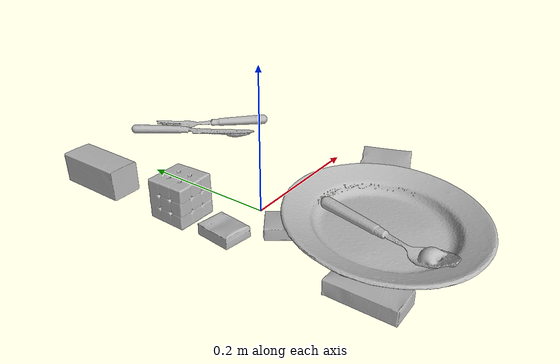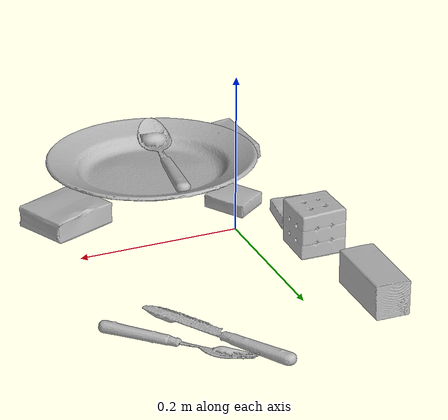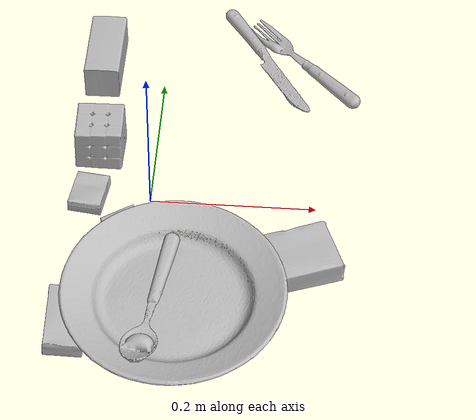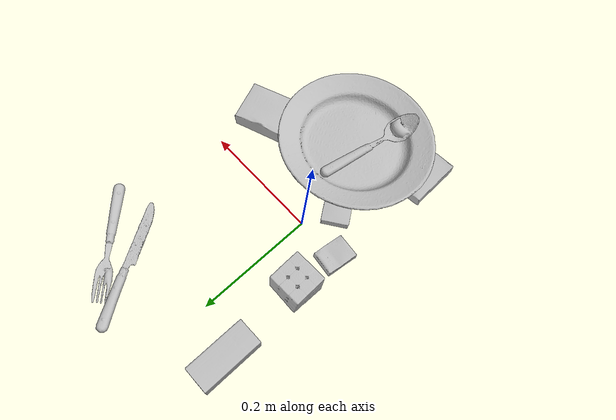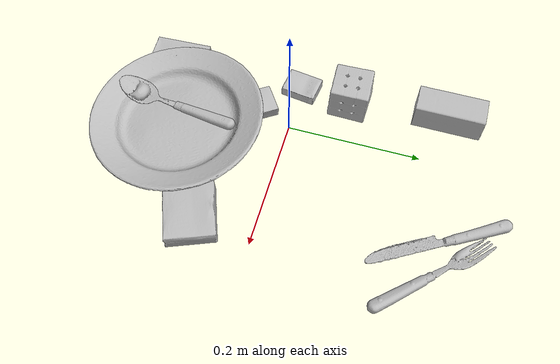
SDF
<sdf version="1.4">
  <world name="default">
    <light name="light1" type="point">
      <pose>0 0 1 0 0 0</pose>
      <diffuse>3 3 3 1</diffuse>
      <specular>3 3 3 1</specular>
    </light>
    <light name="light2" type="point">
      <pose>0 0.5 2 0 0 0</pose>
      <diffuse>1 1 1 1</diffuse>
      <specular>1 1 1 1</specular>
    </light>
    <light name="light3" type="point">
      <pose>0 0.5 2 0 0 0</pose>
      <diffuse>3 3 3 1</diffuse>
      <specular>3 3 3 1</specular>
    </light>
    <scene>
      <ambient>0.7 0.7 0.7</ambient>
    </scene>
    <model name="box11">
      <link name="link_box11">
        <collision name="default">
          <geometry>
            <mesh>
              <uri>model://gelatin_box/collision_meshes/collision.obj</uri>
              <scale>1.0 1.0 1.0</scale>
            </mesh>
          </geometry>
          <surface>
            <friction>
              <ode>
                <mu>0.5</mu>
                <mu2>0.5</mu2>
              </ode>
            </friction>
          <contact>
        <ode>
            <max_vel>0</max_vel>
            <min_depth>0.0001</min_depth>
            <kp>1e8</kp>
        </ode>
    </contact></surface>
        </collision>
        <visual name="default">
          <geometry>
            <mesh>
              <uri>model://gelatin_box/visual_meshes/visual.dae</uri>
              <scale>1.0 1.0 1.0</scale>
            </mesh>
          </geometry>
        </visual>
        <inertial>
          <mass>0.25029057264328003</mass>
          <pose>0.0004319618456065655 0.00011156871914863586 -0.0003640321083366871 -0.0010503719874808634 -0.004755820553863559 0.01644055760983946</pose>
          <inertia>
            <ixx>0.00017668474</ixx>
            <iyy>0.000126205</iyy>
            <izz>0.00026895347</izz>
            <ixy>0</ixy>
            <ixz>0</ixz>
            <iyz>0</iyz>
          </inertia>
        </inertial>
      </link>
      <pose>0.18359896540641785 -0.0901639312505722 0.015168323181569576 0.005605915838325356 -0.007307073465188841 1.9293098280125327</pose>
    </model>
    <model name="box12">
      <link name="link_box12">
        <collision name="default">
          <geometry>
            <mesh>
              <uri>model://rubiks_cube/collision_meshes/collision.obj</uri>
              <scale>1.0 1.0 1.0</scale>
            </mesh>
          </geometry>
          <surface>
            <friction>
              <ode>
                <mu>0.5</mu>
                <mu2>0.5</mu2>
              </ode>
            </friction>
          <contact>
        <ode>
            <max_vel>0</max_vel>
            <min_depth>0.0001</min_depth>
            <kp>1e8</kp>
        </ode>
    </contact></surface>
        </collision>
        <visual name="default">
          <geometry>
            <mesh>
              <uri>model://rubiks_cube/visual_meshes/visual.dae</uri>
              <scale>1.0 1.0 1.0</scale>
            </mesh>
          </geometry>
        </visual>
        <inertial>
          <mass>0.21638615429401398</mass>
          <pose>2.6721043468569405e-05 5.2569666877388954e-05 -7.264316536748083e-06 -0.054671974778446215 -0.0981397652693683 -0.03445575269454635</pose>
          <inertia>
            <ixx>0.00011956789</ixx>
            <iyy>0.00011901029</iyy>
            <izz>0.00012055871</izz>
            <ixy>0</ixy>
            <ixz>0</ixz>
            <iyz>0</iyz>
          </inertia>
        </inertial>
      </link>
      <pose>-0.06796485930681229 0.07862000167369843 0.028678955510258675 -4.031718341525414e-06 -1.879343180076172e-06 -3.1202547471410362</pose>
    </model>
    <model name="box13">
      <link name="link_box13">
        <collision name="default">
          <geometry>
            <mesh>
              <uri>model://pudding_box/collision_meshes/collision.obj</uri>
              <scale>0.5 0.5 0.5</scale>
            </mesh>
          </geometry>
          <surface>
            <friction>
              <ode>
                <mu>0.5</mu>
                <mu2>0.5</mu2>
              </ode>
            </friction>
          <contact>
        <ode>
            <max_vel>0</max_vel>
            <min_depth>0.0001</min_depth>
            <kp>1e8</kp>
        </ode>
    </contact></surface>
        </collision>
        <visual name="default">
          <geometry>
            <mesh>
              <uri>model://pudding_box/visual_meshes/visual.dae</uri>
              <scale>0.5 0.5 0.5</scale>
            </mesh>
          </geometry>
        </visual>
        <inertial>
          <mass>0.024692855775356293</mass>
          <pose>0.00024474109522998333 0.00040339428232982755 -0.0002594413817860186 0.005213102294063647 -0.006603794537377036 0.020079827031592012</pose>
          <inertia>
            <ixx>6.9785e-06</ixx>
            <iyy>4.695185e-06</iyy>
            <izz>1.030558e-05</izz>
            <ixy>0</ixy>
            <ixz>0</ixz>
            <iyz>0</iyz>
          </inertia>
        </inertial>
      </link>
      <pose>-0.020994573831558228 -0.05647357553243637 0.009862903505563736 0.022348644235607416 -0.011391622776638381 -2.5324531890001887</pose>
    </model>
    <model name="box21">
      <link name="link_box21">
        <collision name="default">
          <geometry>
            <mesh>
              <uri>model://wood_block/collision_meshes/collision.obj</uri>
              <scale>0.5 0.5 0.5</scale>
            </mesh>
          </geometry>
          <surface>
            <friction>
              <ode>
                <mu>0.5</mu>
                <mu2>0.5</mu2>
              </ode>
            </friction>
          <contact>
        <ode>
            <max_vel>0</max_vel>
            <min_depth>0.0001</min_depth>
            <kp>1e8</kp>
        </ode>
    </contact></surface>
        </collision>
        <visual name="default">
          <geometry>
            <mesh>
              <uri>model://wood_block/visual_meshes/visual.dae</uri>
              <scale>0.5 0.5 0.5</scale>
            </mesh>
          </geometry>
        </visual>
        <inertial>
          <mass>0.2621258497238159</mass>
          <pose>-2.9066577553749084e-06 -0.000285404734313488 0.00013204291462898254 -0.05220799390803197 -0.005192696360797016 -0.006861376940793837</pose>
          <inertia>
            <ixx>8.7691005e-05</ixx>
            <iyy>0.00027701593</iyy>
            <izz>0.00027597975</izz>
            <ixy>0</ixy>
            <ixz>0</ixz>
            <iyz>0</iyz>
          </inertia>
        </inertial>
      </link>
      <pose>-0.07780526578426361 0.22830255329608917 0.022629261016845703 -0.00520844873291183 0.005718761212013853 1.5739961071647102</pose>
    </model>
    <model name="box22">
      <link name="link_box22">
        <collision name="default">
          <geometry>
            <mesh>
              <uri>model://cracker_box/collision_meshes/collision.obj</uri>
              <scale>0.25 0.25 0.25</scale>
            </mesh>
          </geometry>
          <surface>
            <friction>
              <ode>
                <mu>0.5</mu>
                <mu2>0.5</mu2>
              </ode>
            </friction>
          <contact>
        <ode>
            <max_vel>0</max_vel>
            <min_depth>0.0001</min_depth>
            <kp>1e8</kp>
        </ode>
    </contact></surface>
        </collision>
        <visual name="default">
          <geometry>
            <mesh>
              <uri>model://cracker_box/visual_meshes/visual.dae</uri>
              <scale>0.25 0.25 0.25</scale>
            </mesh>
          </geometry>
        </visual>
        <inertial>
          <mass>0.04544714838266373</mass>
          <pose>0.0002366049593547359 6.358561950037256e-05 -0.0004257383698131889 -0.0003162075981767565 -0.011106493326025165 0.0025467940711340945</pose>
          <inertia>
            <ixx>7.224829e-06</ixx>
            <iyy>1.1929612e-05</iyy>
            <izz>1.702465e-05</izz>
            <ixy>0</ixy>
            <ixz>0</ixz>
            <iyz>0</iyz>
          </inertia>
        </inertial>
      </link>
      <pose>-0.07384230196475983 0.00044496043119579554 0.009120453149080276 -0.011787973310358166 -0.007367202115109697 -1.699078317937116</pose>
    </model>
    <model name="box23">
      <link name="link_box23">
        <collision name="default">
          <geometry>
            <mesh>
              <uri>model://sugar_box/collision_meshes/collision.obj</uri>
              <scale>0.5 0.5 0.5</scale>
            </mesh>
          </geometry>
          <surface>
            <friction>
              <ode>
                <mu>0.5</mu>
                <mu2>0.5</mu2>
              </ode>
            </friction>
          <contact>
        <ode>
            <max_vel>0</max_vel>
            <min_depth>0.0001</min_depth>
            <kp>1e8</kp>
        </ode>
    </contact></surface>
        </collision>
        <visual name="default">
          <geometry>
            <mesh>
              <uri>model://sugar_box/visual_meshes/visual.dae</uri>
              <scale>0.5 0.5 0.5</scale>
            </mesh>
          </geometry>
        </visual>
        <inertial>
          <mass>0.08974423259496689</mass>
          <pose>0.0005171863595023751 1.924554817378521e-05 -0.00018182402709499002 -0.00040462647498757867 0.0010506636387592515 0.0026153785559760484</pose>
          <inertia>
            <ixx>1.869366e-05</ixx>
            <iyy>6.0421757e-05</iyy>
            <izz>7.233205e-05</izz>
            <ixy>0</ixy>
            <ixz>0</ixz>
            <iyz>0</iyz>
          </inertia>
        </inertial>
      </link>
      <pose>-0.07714968919754028 -0.20101484656333923 0.012020626105368137 0.0790924183835511 -0.007062313661698482 1.6030503381957533</pose>
    </model>
    <model name="plate1">
      <link name="link_plate1">
        <collision name="default">
          <geometry>
            <mesh>
              <uri>model://plate/collision_meshes/collision.obj</uri>
              <scale>1.0 1.0 1.0</scale>
            </mesh>
          </geometry>
          <surface>
            <friction>
              <ode>
                <mu>0.5</mu>
                <mu2>0.5</mu2>
              </ode>
            </friction>
          <contact>
        <ode>
            <max_vel>0</max_vel>
            <min_depth>0.0001</min_depth>
            <kp>1e8</kp>
        </ode>
    </contact></surface>
        </collision>
        <visual name="default">
          <geometry>
            <mesh>
              <uri>model://plate/visual_meshes/visual.dae</uri>
              <scale>1.0 1.0 1.0</scale>
            </mesh>
          </geometry>
        </visual>
        <inertial>
          <mass>0.25075921416282654</mass>
          <pose>-0.0006044597248546779 0.00027825814322568476 -0.0010562010575085878 0.0022187872861569474 -0.003225478732834207 0.4526086398584511</pose>
          <inertia>
            <ixx>0.0011730565</ixx>
            <iyy>0.0011618367</iyy>
            <izz>0.0022943232</izz>
            <ixy>0</ixy>
            <ixz>0</ixz>
            <iyz>0</iyz>
          </inertia>
        </inertial>
      </link>
      <pose>0.04233108460903168 -0.1609725058078766 0.020250165835022926 0.050371725770901855 0.04179712565753122 -0.6202711146632703</pose>
    </model>
    <model name="silverware1">
      <link name="link_silverware1">
        <collision name="default">
          <geometry>
            <mesh>
              <uri>model://spoon/collision_meshes/collision.obj</uri>
              <scale>1.0 1.0 1.0</scale>
            </mesh>
          </geometry>
          <surface>
            <friction>
              <ode>
                <mu>0.5</mu>
                <mu2>0.5</mu2>
              </ode>
            </friction>
          <contact>
        <ode>
            <max_vel>0</max_vel>
            <min_depth>0.0001</min_depth>
            <kp>1e8</kp>
        </ode>
    </contact></surface>
        </collision>
        <visual name="default">
          <geometry>
            <mesh>
              <uri>model://spoon/visual_meshes/visual.dae</uri>
              <scale>1.0 1.0 1.0</scale>
            </mesh>
          </geometry>
        </visual>
        <inertial>
          <mass>0.036317918449640274</mass>
          <pose>-0.005526306107640266 -0.0016034167492762208 -0.0007271648501046002 0.03521625205726148 -0.039065835985121374 0.0061506181118877856</pose>
          <inertia>
            <ixx>2.0200612e-06</ixx>
            <iyy>0.00013818844</iyy>
            <izz>0.00013918467</izz>
            <ixy>0</ixy>
            <ixz>0</ixz>
            <iyz>0</iyz>
          </inertia>
        </inertial>
      </link>
      <pose>0.0216558538377285 -0.17149290442466736 0.021735943853855133 -0.007868765608607345 0.06246521413513156 -1.733311212722233</pose>
    </model>
    <model name="silverware2">
      <link name="link_silverware2">
        <collision name="default">
          <geometry>
            <mesh>
              <uri>model://knife/collision_meshes/collision.obj</uri>
              <scale>1.0 1.0 1.0</scale>
            </mesh>
          </geometry>
          <surface>
            <friction>
              <ode>
                <mu>0.5</mu>
                <mu2>0.5</mu2>
              </ode>
            </friction>
          <contact>
        <ode>
            <max_vel>0</max_vel>
            <min_depth>0.0001</min_depth>
            <kp>1e8</kp>
        </ode>
    </contact></surface>
        </collision>
        <visual name="default">
          <geometry>
            <mesh>
              <uri>model://knife/visual_meshes/visual.dae</uri>
              <scale>1.0 1.0 1.0</scale>
            </mesh>
          </geometry>
        </visual>
        <inertial>
          <mass>0.03166225552558899</mass>
          <pose>-0.02378525584936142 0.0015275123296305537 5.0620161346159875e-05 0.07305183970819301 0.01724842094470774 -0.007409827313526415</pose>
          <inertia>
            <ixx>8.9870355e-07</ixx>
            <iyy>0.00012164128</iyy>
            <izz>0.00012193073</izz>
            <ixy>0</ixy>
            <ixz>0</ixz>
            <iyz>0</iyz>
          </inertia>
        </inertial>
      </link>
      <pose>0.12710358202457428 0.24860891699790955 0.007946541532874107 -0.02379662685105269 -0.014543150724349438 -1.0367722833586084</pose>
    </model>
    <model name="silverware3">
      <link name="link_silverware3">
        <collision name="default">
          <geometry>
            <mesh>
              <uri>model://fork/collision_meshes/collision.obj</uri>
              <scale>1.0 1.0 1.0</scale>
            </mesh>
          </geometry>
          <surface>
            <friction>
              <ode>
                <mu>0.5</mu>
                <mu2>0.5</mu2>
              </ode>
            </friction>
          <contact>
        <ode>
            <max_vel>0</max_vel>
            <min_depth>0.0001</min_depth>
            <kp>1e8</kp>
        </ode>
    </contact></surface>
        </collision>
        <visual name="default">
          <geometry>
            <mesh>
              <uri>model://fork/visual_meshes/visual.dae</uri>
              <scale>1.0 1.0 1.0</scale>
            </mesh>
          </geometry>
        </visual>
        <inertial>
          <mass>0.03018845245242119</mass>
          <pose>-0.029570050537586212 0.00046588227269239724 0.00032188609475269914 -0.013551782414775644 -0.010977841906558662 0.014453907874592884</pose>
          <inertia>
            <ixx>1.0582761e-06</ixx>
            <iyy>7.881335e-05</iyy>
            <izz>7.928668e-05</izz>
            <ixy>0</ixy>
            <ixz>0</ixz>
            <iyz>0</iyz>
          </inertia>
        </inertial>
      </link>
      <pose>0.17870981991291046 0.24760106205940247 0.005690674297511578 -0.18746332083806172 0.02491679396921251 2.3309596302133397</pose>
    </model>
  <physics type="ode">
      <max_contacts>50</max_contacts>
      <ode>
        <solver>
          <type>quick</type>
          <iters>75</iters>
        </solver>
        <constraints>
          <contact_max_correcting_vel>0</contact_max_correcting_vel>
          <contact_surface_layer>0</contact_surface_layer>
        </constraints>
      </ode>
    </physics></world>
</sdf>
